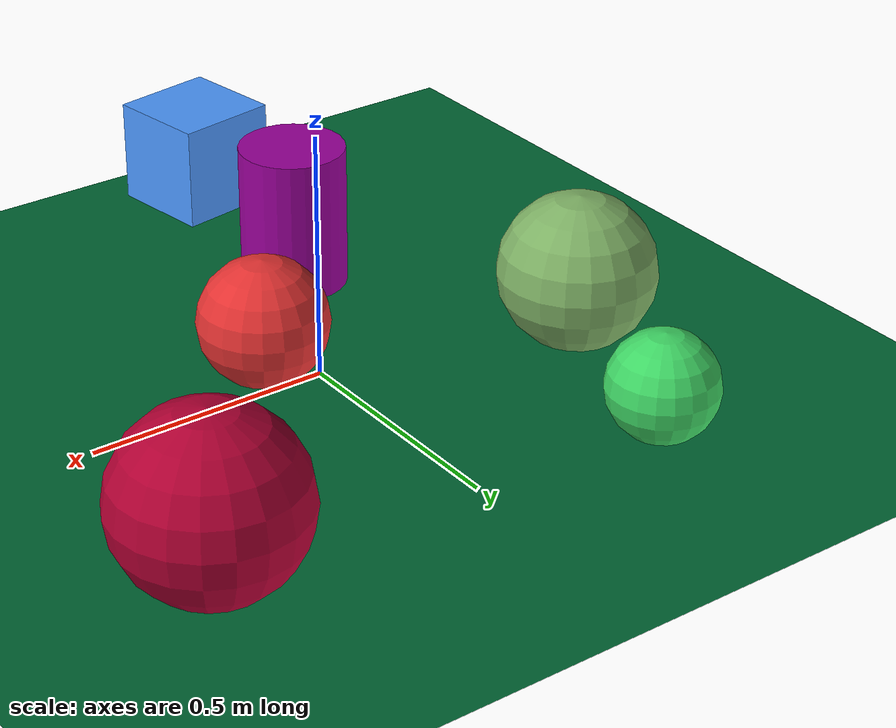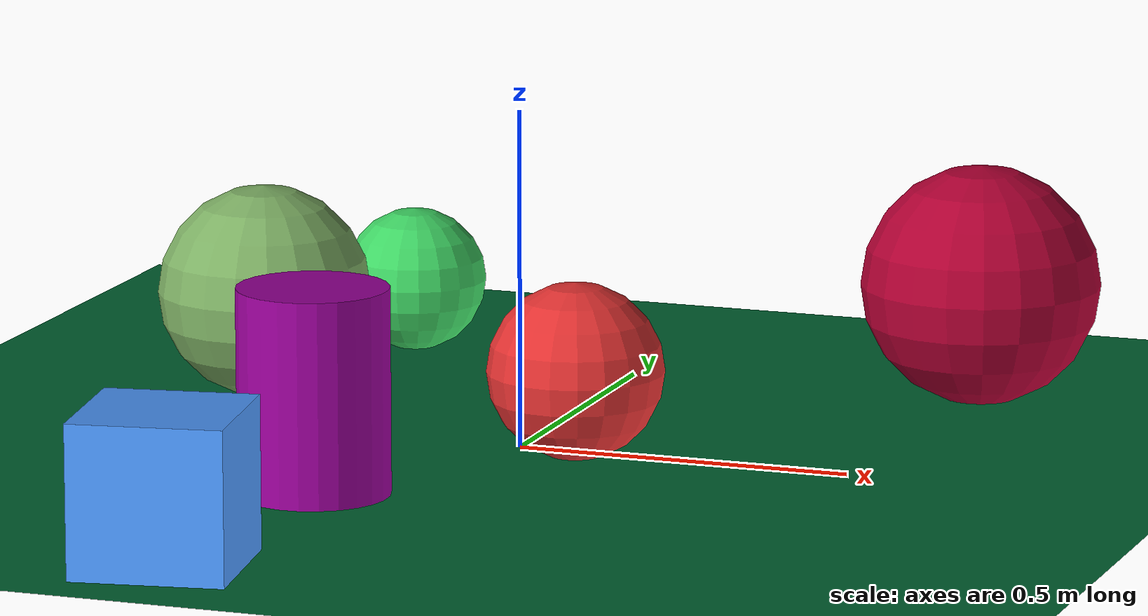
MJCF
<mujoco>
   <asset>
<texture type="skybox" builtin="gradient" rgb1="0.6 0.2 0.9" rgb2="0.3 0.5 0.0" width="256" height="256"/>
<texture name="flat_0" builtin="flat" rgb1="0.6 0.0 0.6" rgb2="0.6 0.0 0.6"  width="200" height="200"/>
<texture name="flat_1" builtin="flat" rgb1="0.3 0.6 1.0" rgb2="0.3 0.6 1.0"  width="200" height="200"/>
<texture name="flat_2" builtin="flat" rgb1="0.7 0.0 0.2" rgb2="0.7 0.0 0.2"  width="200" height="200"/>
<texture name="flat_3" builtin="flat" rgb1="0.9 0.2 0.2" rgb2="0.9 0.2 0.2"  width="200" height="200"/>
<texture name="checker_4" builtin="checker" rgb1="0.2 0.6 0.1" rgb2="0.8 0.8 0.7" width="200" height="200"/>
<texture name="gradient_5" builtin="gradient" rgb1="0.4 0.9 0.2" rgb2="0.1 0.8 0.6" width="200" height="200"/><material name="flat_0_mat" reflectance="0" texture="flat_0" texuniform="true"/>
<material name="flat_1_mat" reflectance="0" texture="flat_1" texuniform="true"/>
<material name="flat_2_mat" reflectance="0" texture="flat_2" texuniform="true"/>
<material name="flat_3_mat" reflectance="0" texture="flat_3" texuniform="true"/>
<material name="checker_4_mat" reflectance="0" texrepeat="8 8" texture="checker_4" texuniform="false" />
<material name="gradient_5_mat" reflectance="0" texture="gradient_5" texuniform="true"/>
   </asset>

   <worldbody>
      <light diffuse=".9 .9 .9" pos="0 0 3" dir="0 0 -1"/>
     <geom type="plane" size="1 1 0.1" rgba="0.0 0.4 0.2 1"/>
<geom type="cylinder" pos="-0.18 -0.36 0.15" size="0.11 0.15 0.15" material="flat_0_mat" euler="0 0 85" />
<geom type="box" pos="-0.22 -0.81 0.11" size="0.11 0.11 0.11" material="flat_1_mat" euler="0 0 9" />
<geom type="sphere" pos="0.55 0.5 0.18" size="0.18 0.18 0.18" material="flat_2_mat" euler="0 0 54" />
<geom type="sphere" pos="0.1 -0.04 0.13" size="0.13 0.13 0.13" material="flat_3_mat" euler="0 0 39" />
<geom type="sphere" pos="-0.48 0.19 0.16" size="0.16 0.16 0.16" material="checker_4_mat" euler="0 0 24" />
<geom type="sphere" pos="-0.38 0.56 0.11" size="0.11 0.11 0.11" material="gradient_5_mat" euler="0 0 60" /><camera euler="60 0 180" fovy="60" name="camera1" pos="-0.2 -1.5 1"></camera>   </worldbody>
</mujoco>
